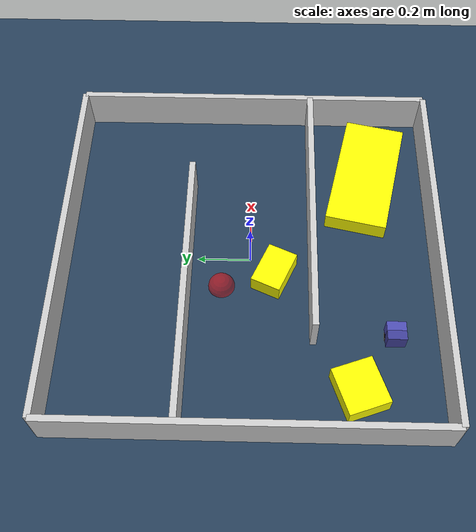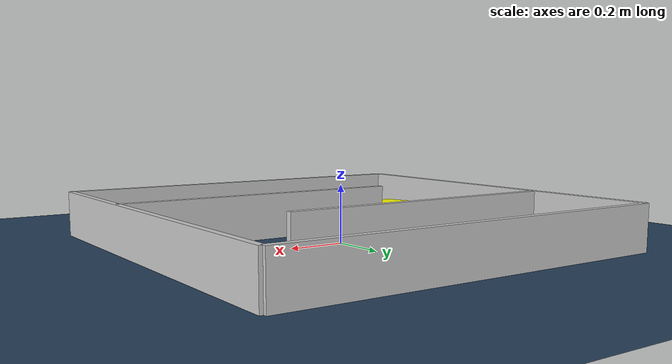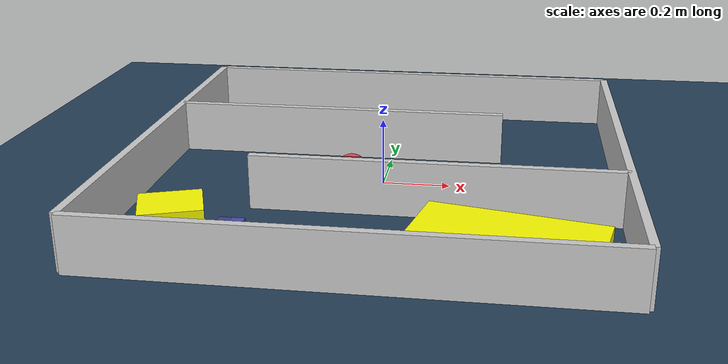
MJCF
<?xml version='1.0' encoding='utf-8'?>
<mujoco model="generated_environment">
  <option timestep="0.002" integrator="implicitfast" cone="elliptic" iterations="100" gravity="0 0 -9.81" />
  <default>
    <geom density="1" />
  </default>
  <asset>
    <texture builtin="gradient" height="3072" rgb1="0.3 0.5 0.7" rgb2="0 0 0" type="skybox" width="512" />
    <texture builtin="checker" height="300" mark="edge" markrgb="0.8 0.8 0.8" name="groundplane" rgb1="0.2 0.3 0.4" rgb2="0.1 0.2 0.3" type="2d" width="300" />
    <material name="groundplane" reflectance="0.2" texrepeat="5 5" texture="groundplane" texuniform="true" />
    <material name="robot" rgba="1.0 1.0 0.0 1.0" />
  </asset>
  <worldbody>
    <light dir="0 0 -1" directional="true" pos="0 0 1.5" />
    <geom condim="4" friction="0.5 0.005 0.001" material="groundplane" name="floor" size="0 0 0.05" type="plane" />
    <body name="walls">
      <geom name="wall_1" condim="4" pos="-0.699000 0.000000 0.080000" rgba="0.800000011920929 0.800000011920929 0.800000011920929 1.0" size="0.011650 0.699000 0.080000" type="box" />
      <geom name="wall_2" condim="4" pos="0.699000 0.000000 0.080000" rgba="0.800000011920929 0.800000011920929 0.800000011920929 1.0" size="0.011650 0.699000 0.080000" type="box" />
      <geom name="wall_3" condim="4" pos="0.000000 -0.699000 0.080000" rgba="0.800000011920929 0.800000011920929 0.800000011920929 1.0" size="0.699000 0.011650 0.080000" type="box" />
      <geom name="wall_4" condim="4" pos="0.000000 0.699000 0.080000" rgba="0.800000011920929 0.800000011920929 0.800000011920929 1.0" size="0.699000 0.011650 0.080000" type="box" />
      <geom name="wall_5" condim="4" pos="0.174750 -0.233000 0.080000" rgba="0.800000011920929 0.800000011920929 0.800000011920929 1.0" size="0.524250 0.011650 0.080000" type="box" />
      <geom name="wall_6" condim="4" pos="-0.174750 0.233000 0.080000" rgba="0.800000011920929 0.800000011920929 0.800000011920929 1.0" size="0.524250 0.011650 0.080000" type="box" />
    </body>
    <body name="car" pos="-0.32500000000000007 -0.525 0.010000">
      <freejoint name="car_freejoint" />
      <inertial pos="0.000000 0 0.037500" mass="0.350000" diaginertia="0.000266 0.000266 0.000286" />
      <geom name="front_chassis_collision" type="box" pos="0.017500 0 0.037500" size="0.017500 0.035000 0.032500" rgba="0.3 0.3 0.7 1" />
      <geom name="rear_chassis_collision" type="box" pos="-0.017500 0 0.037500" size="0.017500 0.035000 0.032500" rgba="0.25 0.25 0.6 1" />
      <geom name="front_marker" type="box" pos="0.034000 0 0.050500" size="0.002000 0.015000 0.010000" rgba="1.0 0.2 0.2 1" contype="0" conaffinity="0" />
      <body name="rear_support_body" pos="-0.030000 0.000000 0.002500">
        <joint name="rear_caster_joint" type="ball" damping="0.0001" />
        <inertial pos="0 0 0" mass="0.025000" diaginertia="0.000001 0.000001 0.000001" />
        <geom name="rear_support" type="sphere" pos="0 0 0" size="0.002500" friction="0.000000 0.000000 0.000000" rgba="0.7 0.1 0.1 1" />
      </body>
      <body name="front_support_body" pos="0.030000 0.000000 0.002500">
        <joint name="front_caster_joint" type="ball" damping="0.0001" />
        <inertial pos="0 0 0" mass="0.025000" diaginertia="0.000001 0.000001 0.000001" />
        <geom name="front_support" type="sphere" pos="0 0 0" size="0.002500" friction="0.000000 0.000000 0.000000" rgba="0.1 0.7 0.1 1" />
      </body>
      <body name="left_wheel" pos="0.000000 0.037500 0.015000">
        <inertial pos="0 0 0" mass="0.050000" diaginertia="0.000003 0.000006 0.000003" />
        <joint name="left_wheel_joint" type="hinge" axis="0 1 0" />
        <geom name="left_wheel_collision" type="cylinder" size="0.015000 0.000500" euler="90 0 0" rgba="0.1 0.1 0.1 1" />
      </body>
      <body name="right_wheel" pos="0.000000 -0.037500 0.015000">
        <inertial pos="0 0 0" mass="0.050000" diaginertia="0.000003 0.000006 0.000003" />
        <joint name="right_wheel_joint" type="hinge" axis="0 1 0" />
        <geom name="right_wheel_collision" type="cylinder" size="0.015000 0.000500" euler="90 0 0" rgba="0.1 0.1 0.1 1" />
      </body>
    </body>
    <body name="obstacle_0_movable">
      <geom name="obstacle_0_movable" condim="4" pos="-0.06784150406496514 -0.09113178068434691 0.035" euler="0 0 65.94316144893921" friction="0.0 0.005 0.001" rgba="1 1 0 1" size="0.05731908933276862 0.08357791795668645 0.035" type="box" mass="0.1" />
      <joint type="free" />
    </body>
    <body name="obstacle_1_movable">
      <geom name="obstacle_1_movable" condim="4" pos="-0.5286292943560154 -0.3887939743644388 0.035" euler="0 0 19.614915336212626" friction="0.0 0.005 0.001" rgba="1 1 0 1" size="0.08781507698284541 0.07742870908992103 0.035" type="box" mass="0.1" />
      <joint type="free" />
    </body>
    <body name="obstacle_2_movable">
      <geom name="obstacle_2_movable" condim="4" pos="0.3804463390723898 -0.4566075016311092 0.035" euler="0 0 257.57483238234187" friction="0.0 0.005 0.001" rgba="1 1 0 1" size="0.11801087055367017 0.2470509433606397 0.035" type="box" mass="0.1" />
      <joint type="free" />
    </body>
    <site name="goal" type="sphere" pos="-0.1150000000000001 0.1050000000000001 0.0" size="0.05" rgba="1 0 0 0.5" />
  </worldbody>
  <actuator>
    <velocity name="left_wheel_drive" joint="left_wheel_joint" ctrlrange="-25.000000 25.000000" kv="0.750000" forcerange="-0.300000 0.300000" />
    <velocity name="right_wheel_drive" joint="right_wheel_joint" ctrlrange="-25.000000 25.000000" kv="0.750000" forcerange="-0.300000 0.300000" />
  </actuator>
</mujoco>
